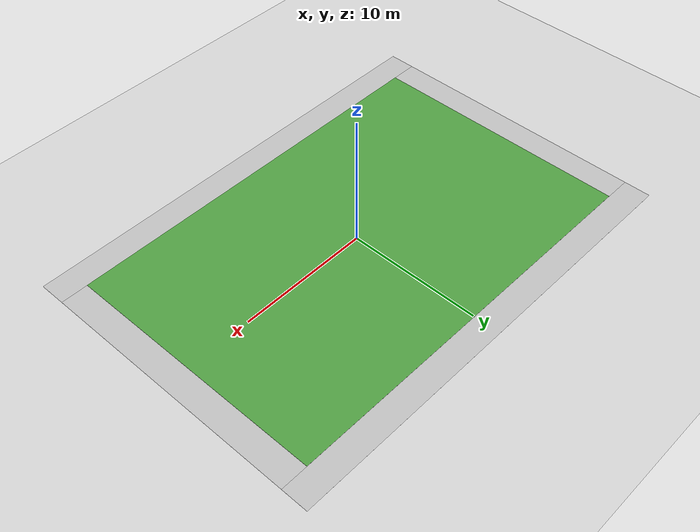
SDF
<sdf version="1.6">
 <world name="default">
  <plugin name="ardupilot_sitl_gazebo_plugin" filename="libardupilot_sitl_gazebo_plugin_rover.so">
   <UAV_MODEL>rover</UAV_MODEL>
  </plugin>
  <light name="sun" type="directional">
   <pose>0 0 10 0 -0 0</pose>
   <diffuse>0.8 0.8 0.8 1</diffuse>
   <specular>0.2 0.2 0.2 1</specular>
   <attenuation>
    <range>1000</range>
    <constant>0.9</constant>
    <linear>0.01</linear>
    <quadratic>0.001</quadratic>
   </attenuation>
   <direction>-0.5 0.1 -0.9</direction>
  </light>
  <model name="ground_plane">
   <static>1</static>
   <link name="link">
    <collision name="collision">
     <geometry><plane><normal>0 0 1</normal><size>100 100</size></plane></geometry>
     <surface><friction><ode><mu>100</mu><mu2>50</mu2></ode></friction></surface>
    </collision>
    <visual name="visual">
     <cast_shadows>0</cast_shadows>
     <geometry><plane><normal>0 0 1</normal><size>100 100</size></plane></geometry>
     <material>
      <script><uri>file://media/materials/scripts/gazebo.material</uri><name>Gazebo/Grey</name></script>
     </material>
    </visual>
   </link>
  </model>
  <gravity>0 0 -9.8</gravity>
  <magnetic_field>6e-06 2.3e-05 -4.2e-05</magnetic_field>
  <atmosphere type="adiabatic"/>
  <physics name="default_physics" default="0" type="ode">
   <max_step_size>0.001</max_step_size>
   <real_time_factor>1</real_time_factor>
   <real_time_update_rate>1000</real_time_update_rate>
  </physics>
  <scene><ambient>0.4 0.4 0.4 1</ambient><background>0.7 0.7 0.7 1</background><shadows>1</shadows></scene>
  <spherical_coordinates>
   <surface_model>EARTH_WGS84</surface_model>
   <latitude_deg>0</latitude_deg>
   <longitude_deg>0</longitude_deg>
   <elevation>0</elevation>
   <heading_deg>0</heading_deg>
  </spherical_coordinates>
  <model name="robocup_3d_field">
   <static>1</static>
   <link name="field">
    <pose>0 0 0.01 0 -0 0</pose>
    <collision name="collision">
     <geometry><plane><normal>0 0 1</normal><size>30 20</size></plane></geometry>
     <surface><friction><ode><mu>100</mu><mu2>50</mu2></ode></friction></surface>
    </collision>
    <visual name="base1">
     <pose>0 11 0.001 0 -0 0</pose>
     <cast_shadows>0</cast_shadows>
     <geometry><plane><normal>0 0 1</normal><size>34 2</size></plane></geometry>
     <material>
      <script>
       <uri>model://robocup_3Dsim_field/materials/scripts/</uri>
       <uri>model://robocup_3Dsim_field/materials/textures/</uri>
       <name>RoboCup/FieldBorder</name>
      </script>
     </material>
    </visual>
    <visual name="base2">
     <pose>0 -11 0.001 0 -0 0</pose>
     <cast_shadows>0</cast_shadows>
     <geometry><plane><normal>0 0 1</normal><size>34 2</size></plane></geometry>
     <material>
      <script>
       <uri>model://robocup_3Dsim_field/materials/scripts/</uri>
       <uri>model://robocup_3Dsim_field/materials/textures/</uri>
       <name>RoboCup/FieldBorder</name>
      </script>
     </material>
    </visual>
    <visual name="base3">
     <pose>16 0 0.001 0 -0 0</pose>
     <cast_shadows>0</cast_shadows>
     <geometry><plane><normal>0 0 1</normal><size>2 20</size></plane></geometry>
     <material>
      <script>
       <uri>model://robocup_3Dsim_field/materials/scripts/</uri>
       <uri>model://robocup_3Dsim_field/materials/textures/</uri>
       <name>RoboCup/FieldBorder</name>
      </script>
     </material>
    </visual>
    <visual name="base4">
     <pose>-16 0 0.001 0 -0 0</pose>
     <cast_shadows>0</cast_shadows>
     <geometry><plane><normal>0 0 1</normal><size>2 20</size></plane></geometry>
     <material>
      <script>
       <uri>model://robocup_3Dsim_field/materials/scripts/</uri>
       <uri>model://robocup_3Dsim_field/materials/textures/</uri>
       <name>RoboCup/FieldBorder</name>
      </script>
     </material>
    </visual>
    <visual name="carpet">
     <cast_shadows>0</cast_shadows>
     <geometry><plane><normal>0 0 1</normal><size>30 20</size></plane></geometry>
     <material>
      <script>
       <uri>model://robocup_3Dsim_field/materials/scripts/</uri>
       <uri>model://robocup_3Dsim_field/materials/textures/</uri>
       <name>RoboCup/Grass</name>
      </script>
     </material>
    </visual>
   </link>
   <pose>-0.031698 0.111229 0 0 -0 0</pose>
  </model>
 </world>
</sdf>
